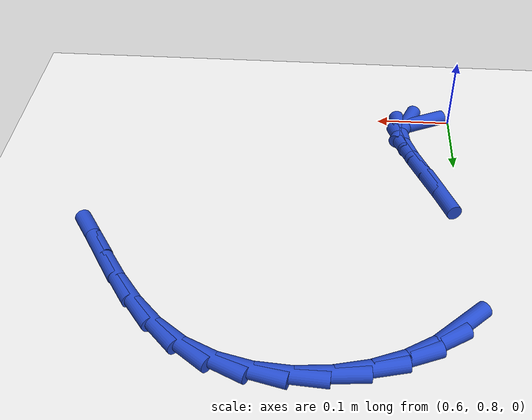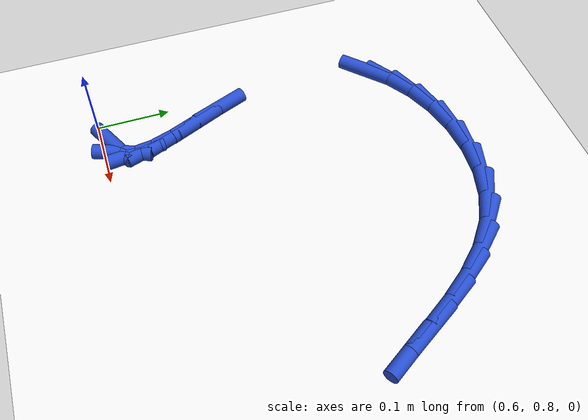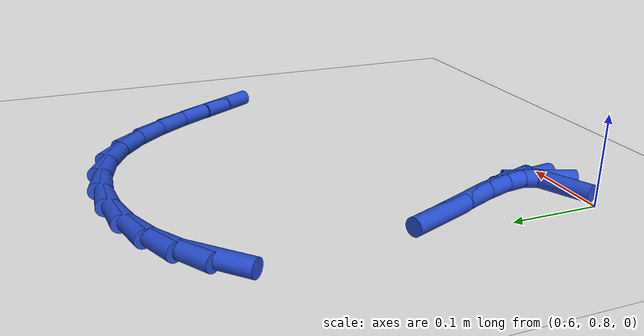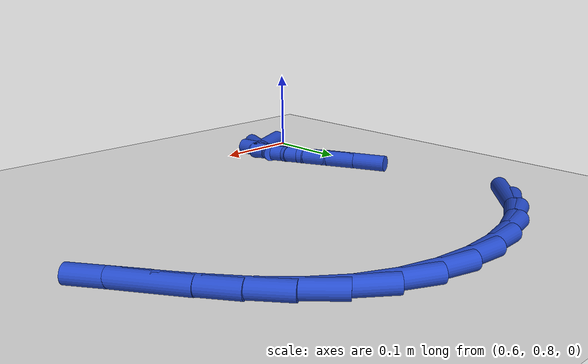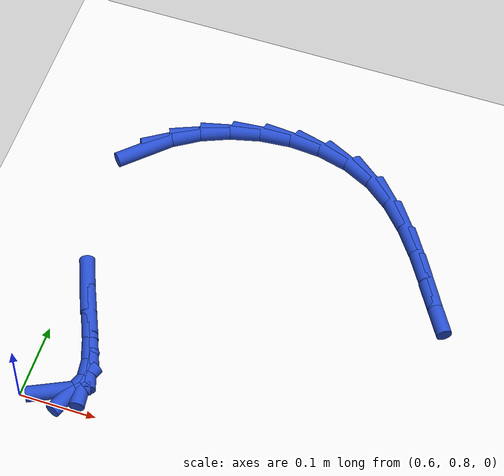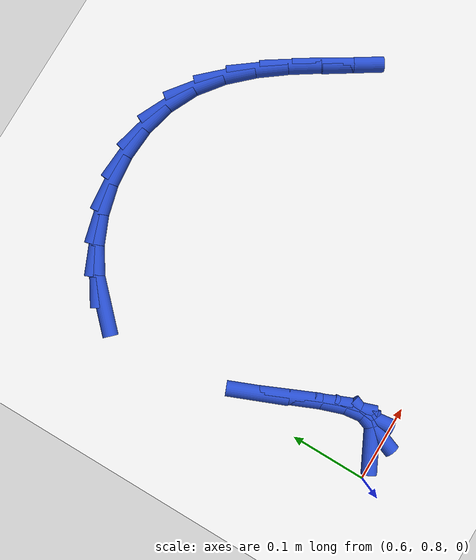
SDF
<sdf version="1.6">
 <world name="default">
  <model name="ground_plane">
   <static>1</static>
   <link name="link">
    <collision name="collision">
     <geometry><plane><normal>0 0 1</normal><size>100 100</size></plane></geometry>
     <surface><friction><ode><mu>100</mu><mu2>50</mu2></ode></friction></surface>
    </collision>
    <visual name="visual">
     <cast_shadows>0</cast_shadows>
     <geometry><plane><normal>0 0 1</normal><size>100 100</size></plane></geometry>
     <material>
      <script><uri>file://media/materials/scripts/gazebo.material</uri><name>Gazebo/WhiteGlow</name></script>
     </material>
    </visual>
   </link>
  </model>
  <model name="line">
   <link name="link_33">
    <pose>0.6453338569085092 0.815492026277322 0.01 0 1.57 0.4562666971590935</pose>
    <collision name="collision">
     <geometry><cylinder><radius>0.01</radius><length>0.08</length></cylinder></geometry>
    </collision>
    <visual name="visual">
     <material>
      <script><name>Gazebo/Blue</name><uri>file://media/materials/scripts/gazebo.material</uri></script>
     </material>
     <geometry><cylinder><radius>0.01</radius><length>0.08</length></cylinder></geometry>
    </visual>
   </link>
   <link name="link_34">
    <pose>0.6632460314798072 0.8242834580002737 0.01 0 1.57 1.2048317003839442</pose>
    <collision name="collision">
     <geometry><cylinder><radius>0.01</radius><length>0.08</length></cylinder></geometry>
    </collision>
    <visual name="visual">
     <material>
      <script><name>Gazebo/Blue</name><uri>file://media/materials/scripts/gazebo.material</uri></script>
     </material>
     <geometry><cylinder><radius>0.01</radius><length>0.08</length></cylinder></geometry>
    </visual>
   </link>
   <link name="link_35">
    <pose>0.6697327051443129 0.8412098688993299 0.01 0 1.57 -1.440100866369434</pose>
    <collision name="collision">
     <geometry><cylinder><radius>0.01</radius><length>0.08</length></cylinder></geometry>
    </collision>
    <visual name="visual">
     <material>
      <script><name>Gazebo/Blue</name><uri>file://media/materials/scripts/gazebo.material</uri></script>
     </material>
     <geometry><cylinder><radius>0.01</radius><length>0.08</length></cylinder></geometry>
    </visual>
   </link>
   <link name="link_36">
    <pose>0.6665412741723855 0.8654895108119429 0.01 0 1.57 -1.2426842140372603</pose>
    <collision name="collision">
     <geometry><cylinder><radius>0.01</radius><length>0.08</length></cylinder></geometry>
    </collision>
    <visual name="visual">
     <material>
      <script><name>Gazebo/Blue</name><uri>file://media/materials/scripts/gazebo.material</uri></script>
     </material>
     <geometry><cylinder><radius>0.01</radius><length>0.08</length></cylinder></geometry>
    </visual>
   </link>
   <link name="link_37">
    <pose>0.6562336477006269 0.8957689359885624 0.01 0 1.57 -1.1684779681116715</pose>
    <collision name="collision">
     <geometry><cylinder><radius>0.01</radius><length>0.08</length></cylinder></geometry>
    </collision>
    <visual name="visual">
     <material>
      <script><name>Gazebo/Blue</name><uri>file://media/materials/scripts/gazebo.material</uri></script>
     </material>
     <geometry><cylinder><radius>0.01</radius><length>0.08</length></cylinder></geometry>
    </visual>
   </link>
   <link name="link_38">
    <pose>0.6413717348656395 0.9306946966796384 0.01 0 1.57 -1.1554548927862949</pose>
    <collision name="collision">
     <geometry><cylinder><radius>0.01</radius><length>0.08</length></cylinder></geometry>
    </collision>
    <visual name="visual">
     <material>
      <script><name>Gazebo/Blue</name><uri>file://media/materials/scripts/gazebo.material</uri></script>
     </material>
     <geometry><cylinder><radius>0.01</radius><length>0.08</length></cylinder></geometry>
    </visual>
   </link>
   <link name="link_39">
    <pose>0.6245174448040254 0.9689133451356217 0.01 0 1.57 -1.1855436105739772</pose>
    <collision name="collision">
     <geometry><cylinder><radius>0.01</radius><length>0.08</length></cylinder></geometry>
    </collision>
    <visual name="visual">
     <material>
      <script><name>Gazebo/Blue</name><uri>file://media/materials/scripts/gazebo.material</uri></script>
     </material>
     <geometry><cylinder><radius>0.01</radius><length>0.08</length></cylinder></geometry>
    </visual>
   </link>
   <link name="link_45">
    <pose>0.6187686229902907 1.1929086201098107 0.01 0 1.57 0.7711072919826788</pose>
    <collision name="collision">
     <geometry><cylinder><radius>0.01</radius><length>0.08</length></cylinder></geometry>
    </collision>
    <visual name="visual">
     <material>
      <script><name>Gazebo/Blue</name><uri>file://media/materials/scripts/gazebo.material</uri></script>
     </material>
     <geometry><cylinder><radius>0.01</radius><length>0.08</length></cylinder></geometry>
    </visual>
   </link>
   <link name="link_46">
    <pose>0.6458435331864244 1.2192205341232316 0.01 0 1.57 0.5758798483706761</pose>
    <collision name="collision">
     <geometry><cylinder><radius>0.01</radius><length>0.08</length></cylinder></geometry>
    </collision>
    <visual name="visual">
     <material>
      <script><name>Gazebo/Blue</name><uri>file://media/materials/scripts/gazebo.material</uri></script>
     </material>
     <geometry><cylinder><radius>0.01</radius><length>0.08</length></cylinder></geometry>
    </visual>
   </link>
   <link name="link_47">
    <pose>0.6788650919067416 1.24066128557744 0.01 0 1.57 0.4051807091700433</pose>
    <collision name="collision">
     <geometry><cylinder><radius>0.01</radius><length>0.08</length></cylinder></geometry>
    </collision>
    <visual name="visual">
     <material>
      <script><name>Gazebo/Blue</name><uri>file://media/materials/scripts/gazebo.material</uri></script>
     </material>
     <geometry><cylinder><radius>0.01</radius><length>0.08</length></cylinder></geometry>
    </visual>
   </link>
   <link name="link_48">
    <pose>0.7163444799584449 1.2567366996335945 0.01 0 1.57 0.2473925315085086</pose>
    <collision name="collision">
     <geometry><cylinder><radius>0.01</radius><length>0.08</length></cylinder></geometry>
    </collision>
    <visual name="visual">
     <material>
      <script><name>Gazebo/Blue</name><uri>file://media/materials/scripts/gazebo.material</uri></script>
     </material>
     <geometry><cylinder><radius>0.01</radius><length>0.08</length></cylinder></geometry>
    </visual>
   </link>
   <link name="link_49">
    <pose>0.7567928781487374 1.2669526014528556 0.01 0 1.57 0.09185490037564378</pose>
    <collision name="collision">
     <geometry><cylinder><radius>0.01</radius><length>0.08</length></cylinder></geometry>
    </collision>
    <visual name="visual">
     <material>
      <script><name>Gazebo/Blue</name><uri>file://media/materials/scripts/gazebo.material</uri></script>
     </material>
     <geometry><cylinder><radius>0.01</radius><length>0.08</length></cylinder></geometry>
    </visual>
   </link>
   <link name="link_50">
    <pose>0.7987214672848227 1.2708148161963824 0.01 0 1.57 -0.07110250183224795</pose>
    <collision name="collision">
     <geometry><cylinder><radius>0.01</radius><length>0.08</length></cylinder></geometry>
    </collision>
    <visual name="visual">
     <material>
      <script><name>Gazebo/Blue</name><uri>file://media/materials/scripts/gazebo.material</uri></script>
     </material>
     <geometry><cylinder><radius>0.01</radius><length>0.08</length></cylinder></geometry>
    </visual>
   </link>
   <link name="link_51">
    <pose>0.8406414281739035 1.2678291690253343 0.01 0 1.57 -0.250142167579732</pose>
    <collision name="collision">
     <geometry><cylinder><radius>0.01</radius><length>0.08</length></cylinder></geometry>
    </collision>
    <visual name="visual">
     <material>
      <script><name>Gazebo/Blue</name><uri>file://media/materials/scripts/gazebo.material</uri></script>
     </material>
     <geometry><cylinder><radius>0.01</radius><length>0.08</length></cylinder></geometry>
    </visual>
   </link>
   <link name="link_52">
    <pose>0.8810639416231834 1.257501485100871 0.01 0 1.57 -0.4517330003039419</pose>
    <collision name="collision">
     <geometry><cylinder><radius>0.01</radius><length>0.08</length></cylinder></geometry>
    </collision>
    <visual name="visual">
     <material>
      <script><name>Gazebo/Blue</name><uri>file://media/materials/scripts/gazebo.material</uri></script>
     </material>
     <geometry><cylinder><radius>0.01</radius><length>0.08</length></cylinder></geometry>
    </visual>
   </link>
   <link name="link_53">
    <pose>0.9185002101703883 1.239337623199597 0.01 0 1.57 -0.6610865135040858</pose>
    <collision name="collision">
     <geometry><cylinder><radius>0.01</radius><length>0.08</length></cylinder></geometry>
    </collision>
    <visual name="visual">
     <material>
      <script><name>Gazebo/Blue</name><uri>file://media/materials/scripts/gazebo.material</uri></script>
     </material>
     <geometry><cylinder><radius>0.01</radius><length>0.08</length></cylinder></geometry>
    </visual>
   </link>
   <link name="link_54">
    <pose>0.951829377572703 1.2134126188041072 0.01 0 1.57 -0.8212805109000028</pose>
    <collision name="collision">
     <geometry><cylinder><radius>0.01</radius><length>0.08</length></cylinder></geometry>
    </collision>
    <visual name="visual">
     <material>
      <script><name>Gazebo/Blue</name><uri>file://media/materials/scripts/gazebo.material</uri></script>
     </material>
     <geometry><cylinder><radius>0.01</radius><length>0.08</length></cylinder></geometry>
    </visual>
   </link>
   <link name="link_55">
    <pose>0.9812341847487689 1.1818180717259201 0.01 0 1.57 -0.929008160906967</pose>
    <collision name="collision">
     <geometry><cylinder><radius>0.01</radius><length>0.08</length></cylinder></geometry>
    </collision>
    <visual name="visual">
     <material>
      <script><name>Gazebo/Blue</name><uri>file://media/materials/scripts/gazebo.material</uri></script>
     </material>
     <geometry><cylinder><radius>0.01</radius><length>0.08</length></cylinder></geometry>
    </visual>
   </link>
   <link name="link_56">
    <pose>1.0071859373438081 1.147091969166315 0.01 0 1.57 -0.99417797046157</pose>
    <collision name="collision">
     <geometry><cylinder><radius>0.01</radius><length>0.08</length></cylinder></geometry>
    </collision>
    <visual name="visual">
     <material>
      <script><name>Gazebo/Blue</name><uri>file://media/materials/scripts/gazebo.material</uri></script>
     </material>
     <geometry><cylinder><radius>0.01</radius><length>0.08</length></cylinder></geometry>
    </visual>
   </link>
   <link name="link_57">
    <pose>1.0301559410030408 1.111772298326571 0.01 0 1.57 -1.0208612360913005</pose>
    <collision name="collision">
     <geometry><cylinder><radius>0.01</radius><length>0.08</length></cylinder></geometry>
    </collision>
    <visual name="visual">
     <material>
      <script><name>Gazebo/Blue</name><uri>file://media/materials/scripts/gazebo.material</uri></script>
     </material>
     <geometry><cylinder><radius>0.01</radius><length>0.08</length></cylinder></geometry>
    </visual>
   </link>
   <link name="link_58">
    <pose>1.0506155013716885 1.0783970464079673 0.01 0 1.57 -1.0032283463574</pose>
    <collision name="collision">
     <geometry><cylinder><radius>0.01</radius><length>0.08</length></cylinder></geometry>
    </collision>
    <visual name="visual">
     <material>
      <script><name>Gazebo/Blue</name><uri>file://media/materials/scripts/gazebo.material</uri></script>
     </material>
     <geometry><cylinder><radius>0.01</radius><length>0.08</length></cylinder></geometry>
    </visual>
   </link>
  </model>
 </world>
</sdf>
